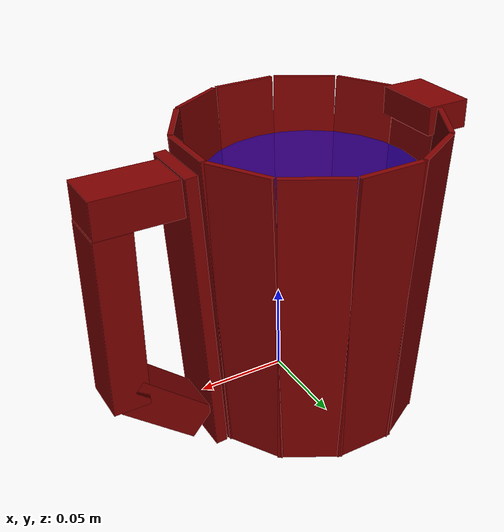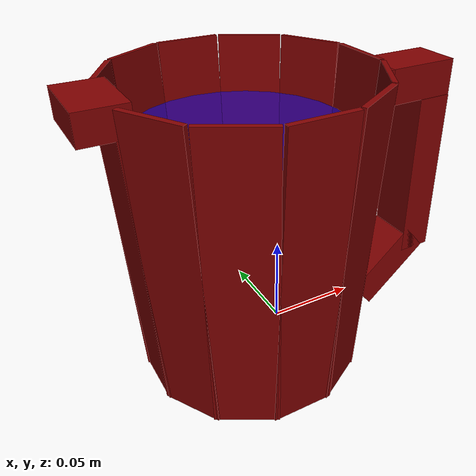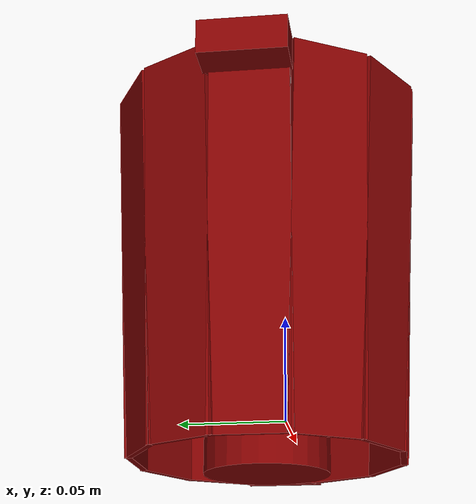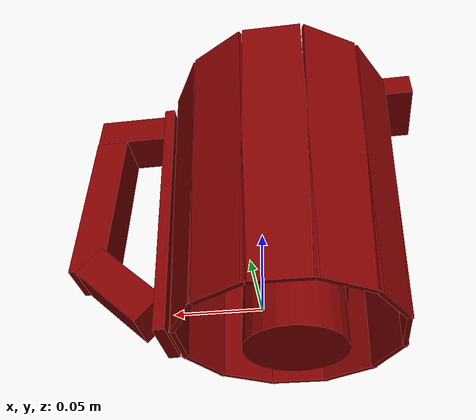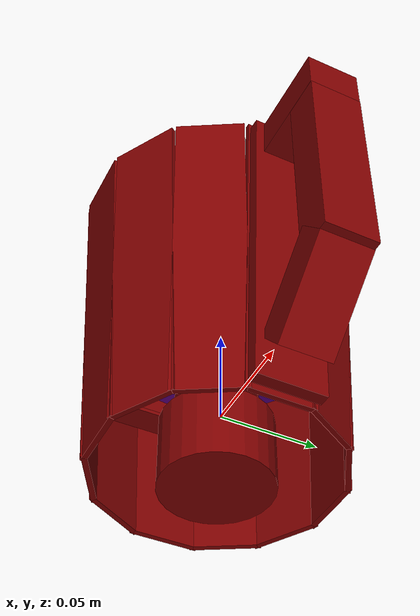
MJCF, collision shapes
<mujoco model="model">
  <option timestep="0.002" gravity="0.0 0.0 -9.81"/>
  <compiler angle="radian"/>
  <asset>
    <mesh file="visuals/blade.obj" name="blade_vis"/>
    <mesh file="visuals/pitcher.obj" name="pitcher_vis"/>
    <mesh file="visuals/pitcher_main.obj" name="pitcher_main_vis"/>
    <texture file="visuals/T_BC001.png" name="pitcher_material" type="2d"/>
    <material name="pitcher_material" rgba="1 1 1 1.0" texture="pitcher_material" shininess="0.4472135901451111" specular="1"/>
    <texture file="visuals/T_BC001.png" name="blade_material" type="2d"/>
    <material name="blade_material" rgba="1 1 1 1.0" texture="blade_material" shininess="0.4472135901451111" specular="1"/>
    <texture file="visuals/T_BC001.png" name="pitcher_main_material" type="2d"/>
    <material name="pitcher_main_material" rgba="1 1 1 0.800000011920929" texture="pitcher_main_material" shininess="0.4472135901451111" specular="0.3103448502657381"/>
  </asset>
  <default>
    <default class="visual">
      <geom conaffinity="0" contype="0" group="1" type="mesh"/>
    </default>
    <default class="collision">
      <geom group="0" rgba="0.5 0 0 0.5" density="1.0" solref="0.004 1" solimp="0.998 0.998 0.001"/>
    </default>
    <default class="spawn">
      <geom group="0" rgba="1 1 1 0.5" contype="0" conaffinity="0"/>
      <site group="0" rgba="1 1 1 0.5"/>
    </default>
    <default class="region">
      <geom group="1" conaffinity="0" contype="0" rgba="0 1 0 0" mass="0"/>
    </default>
  </default>
  <worldbody>
    <body>
      <body name="object">
        <body name="pitcher">
          <geom mesh="pitcher_vis" type="mesh" solimp="0.998 0.998 0.001" solref="0.001 1" friction="0.95 0.3 0.1" class="visual" material="pitcher_material"/>
          <geom class="collision" type="box" pos="0.08418640 0.00630333 0.13202402" size="0.024435071274638176 0.013484399765729904 0.010110474191606045" quat="1.0 0.0 0.0 0.0" name="pitcher_handle_2"/>
          <geom class="collision" type="box" pos="0.09880317 0.00630333 0.07120916" size="0.010110338218510151 0.013484399765729904 0.05041544884443283" quat="1.0 0.0 0.0 0.0" name="pitcher_handle_1"/>
          <geom class="collision" type="box" pos="0.07894173 0.00630333 0.01163420" size="0.02543528564274311 0.013484399765729904 0.010110336355865002" quat="0.9384012818336487 0.0 -0.3455474078655243 0.0" name="pitcher_handle_0"/>
          <geom type="box" pos="0.05565577 0.00609948 0.06190076" size="0.003270904766395688 0.017711566761136055 0.08210444450378418" quat="0.9996132850646973 0.0 0.027808554470539093 0.0" class="collision"/>
          <body name="blade">
            <geom mesh="blade_vis" type="mesh" solimp="0.998 0.998 0.001" solref="0.001 1" friction="0.95 0.3 0.1" class="visual" material="blade_material"/>
            <geom type="cylinder" pos="-0.01759728 0.00651794 -0.00822668" size="0.0280256737023592 0.018888885155320168" quat="1.0 0.0 0.0 0.0" class="collision"/>
            <geom type="cylinder" pos="-0.01759728 0.00651794 0.03841868" size="0.02053365297615528 0.027440669015049934" quat="1.0 0.0 0.0 0.0" class="collision"/>
            <geom type="box" pos="-0.04218399 -0.01018318 0.02206498" size="0.006671010982245207 0.025818057358264923 0.0009999943431466818" quat="1.0 0.0 0.0 0.0" class="collision"/>
            <geom type="box" pos="0.00668284 0.02300004 0.03221628" size="0.006671010982245207 0.025818057358264923 0.000999994808807969" quat="1.0 0.0 0.0 0.0" class="collision"/>
            <geom type="box" pos="-0.00153811 -0.01841878 0.06132433" size="0.025818057358264923 0.006671012844890356 0.0009999953908845782" quat="1.0 0.0 0.0 0.0" class="collision"/>
            <geom type="box" pos="-0.03472133 0.03044805 0.05117302" size="0.025818057358264923 0.006671012844890356 0.0009999959729611874" quat="1.0 0.0 0.0 0.0" class="collision"/>
          </body>
          <body name="pitcher_main">
            <geom class="region" type="cylinder" size="0.058592818677425385 0.02691003493964672" pos="-0.01763877 0.00649621 0.09418293" rgba="0 0 1 0.5" name="reg_int"/>
            <geom mesh="pitcher_main_vis" type="mesh" solimp="0.998 0.998 0.001" solref="0.001 1" friction="0.95 0.3 0.1" class="visual" material="pitcher_main_material"/>
            <geom type="box" pos="0.04899446 0.00609948 0.06479517" size="0.0014110434567555785 0.017711566761136055 0.08591540902853012" quat="0.9996132850646973 0.0 0.027808554470539093 0.0" class="collision"/>
            <geom type="box" pos="-0.07943814 0.00609948 0.06479517" size="0.0014110434567555785 0.017711566761136055 0.08591540902853012" quat="0.9996132850646973 0.0 -0.02780856378376484 0.0" class="collision"/>
            <geom type="box" pos="-0.01522185 0.07031578 0.06479517" size="0.0014110434567555785 0.017711566761136055 0.08591540902853012" quat="0.7068333625793457 -0.019663644954562187 -0.019663646817207336 -0.7068333029747009" class="collision"/>
            <geom type="box" pos="-0.01522183 -0.05811682 0.06479517" size="0.0014110434567555785 0.017711566761136055 0.08591540902853012" quat="0.7068333625793457 0.01966363750398159 0.01966363750398159 -0.7068333029747009" class="collision"/>
            <geom type="box" pos="-0.04732998 -0.04951347 0.06479517" size="0.0014110434567555785 0.017711566761136055 0.08591540902853012" quat="0.49980661273002625 0.024082934483885765 0.013904287479817867 -0.8656904697418213" class="collision"/>
            <geom type="box" pos="0.01688630 0.06171243 0.06479517" size="0.0014110434567555785 0.017711566761136055 0.08591540902853012" quat="0.49980661273002625 -0.02408294379711151 -0.013904293067753315 -0.8656904697418213" class="collision"/>
            <geom type="box" pos="0.04039111 0.03820763 0.06479517" size="0.0014110434567555785 0.017711566761136055 0.08591540902853012" quat="0.25871896743774414 -0.026861032471060753 -0.007197392173111439 -0.9655522704124451" class="collision"/>
            <geom type="box" pos="-0.07083479 -0.02600867 0.06479517" size="0.0014110434567555785 0.017711566761136055 0.08591540902853012" quat="0.25871896743774414 0.026861021295189857 0.007197389379143715 -0.9655522704124451" class="collision"/>
            <geom type="box" pos="-0.07083479 0.03820764 0.06479517" size="0.0014110434567555785 0.017711566761136055 0.08591540157794952" quat="0.25871920585632324 -0.026860984042286873 0.007197386585175991 0.9655522108078003" class="collision"/>
            <geom type="box" pos="0.04039111 -0.02600867 0.06479517" size="0.0014110434567555785 0.017711566761136055 0.08591540902853012" quat="0.25871920585632324 0.026861025020480156 -0.007197396829724312 0.9655522108078003" class="collision"/>
            <geom type="box" pos="0.01688631 -0.04951347 0.06479517" size="0.0014110434567555785 0.017711566761136055 0.08591540902853012" quat="0.4998069107532501 0.024082958698272705 -0.013904307037591934 0.865690290927887" class="collision"/>
            <geom type="box" pos="-0.04732999 0.06171243 0.06479517" size="0.0014110434567555785 0.017711566761136055 0.08591540902853012" quat="0.4998069107532501 -0.02408294752240181 0.013904299587011337 0.865690290927887" class="collision"/>
            <geom type="box" pos="-0.08910745 0.00693062 0.14392556" size="0.012614632025361061 0.019579734653234482 0.007855560630559921" quat="1.0 0.0 0.0 0.0" class="collision"/>
          </body>
        </body>
        <geom class="region" name="reg_bbox" density="0" type="box" pos="0.002316500000000006 0.0064039999999999965 0.06275900000000001" size="0.10652249999999999 0.0679265 0.089229"/>
      </body>
      <site rgba="0 1 0 0" size="0.005" pos="-0.01545465 0.00640317 0.15163089" name="anchor_site"/>
    </body>
  </worldbody>
</mujoco>
